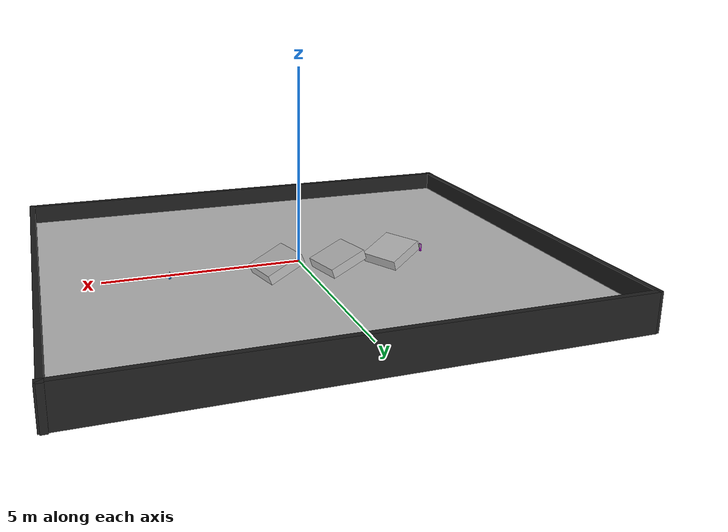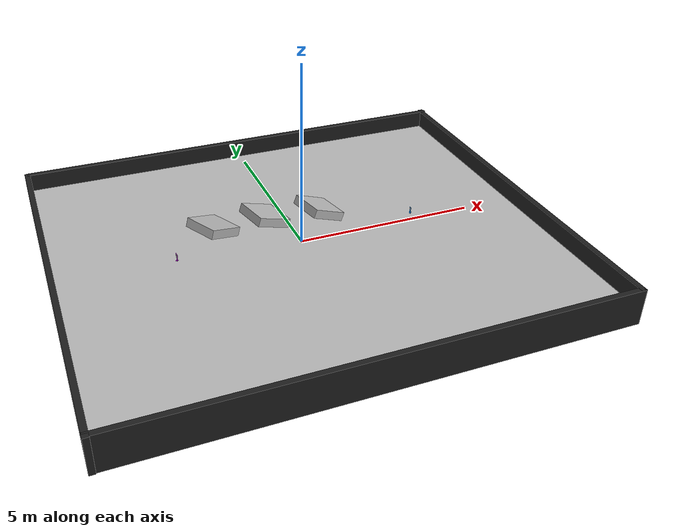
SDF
<sdf version="1.4">
  <world name="default">
    <scene>
      <ambient>0.8 0.8 0.8 1</ambient>
      <background>0.7 0.7 0.7 1</background>
      <shadows>true</shadows>
    </scene>

    <!-- A global light source -->
    <include>
      <uri>model://sun</uri>
      <pose> -2.0 2.0 2.0 0 0 0</pose>
    </include>

  <!-- Piso da sala - circuito -->
    <include>
      <uri>model://corredor/pisosala</uri>
      <pose> 0 0 0 0 0 -1.57</pose>
    </include>

  <!-- Parede da sala - circuito -->
    <include>
      <uri>model://corredor/parede</uri>
      <pose> 0 0 0 0 0 0</pose>
    </include>

<!--  creeper_21_laranja -->
    <include>
      <uri>model://corredor/creepers/creeper_21_laranja</uri>
      <pose> -3.33  0.28 0   0 0 -3.07</pose>
    </include>

<!--  creeper_11_azul-->
    <include>
      <uri>model://corredor/creepers/creeper_11_azul</uri>
      <pose> 3.40  0.28 0   0 0 -3.07</pose>
    </include>

 <!--  creeper_50 -->
    <include>
      <uri>model://corredor/creepers/creeper_50</uri>
      <pose> 0.83 0.92 0.24 0 0.40 0.23</pose>
    </include>

 <!--  creeper_150 -->
    <include>
      <uri>model://corredor/creepers/creeper_150</uri>
      <pose> -0.706 1.06 0.25 0 0.35 0.24</pose>
    </include>

 <!--  creeper_200 -->
    <include>
      <uri>model://corredor/creepers/creeper_200</uri>
      <pose> -2.182 0.975 0.25 0 0.33 0.48</pose>
    </include>

    <physics type="ode">
      <real_time_update_rate>1000.0</real_time_update_rate>
      <max_step_size>0.001</max_step_size>
      <real_time_factor>1</real_time_factor>
      <ode>
        <solver>
          <type>quick</type>
          <iters>150</iters>
          <precon_iters>0</precon_iters>
          <sor>1.400000</sor>
          <use_dynamic_moi_rescaling>1</use_dynamic_moi_rescaling>
        </solver>
        <constraints>
          <cfm>0.00001</cfm>
          <erp>0.2</erp>
          <contact_max_correcting_vel>2000.000000</contact_max_correcting_vel>
          <contact_surface_layer>0.01000</contact_surface_layer>
        </constraints>
      </ode>
    </physics>

    <gui fullscreen='0'>
      <camera name='user_camera'>
        <pose frame=''>0.238775 -6.8831 10.8485 -0 0.979642 1.5602</pose>
        <view_controller>orbit</view_controller>
        <projection_type>perspective</projection_type>
      </camera>
    </gui>

  </world>

</sdf>

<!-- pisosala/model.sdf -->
<sdf version="1.6">
  <model name="pisosala_forca">
    <static>true</static>
    <link name="course_link">
      <collision name="course_collision">
        <geometry>
          <plane>
            <normal>0 0 1</normal>
            <size>10 13</size>
          </plane>
        </geometry>
        <surface>
          <friction>
            <ode>
              <mu>100</mu>
              <mu2>50</mu2>
            </ode>
          </friction>
        </surface>
      </collision>
      <visual name="course_visual">
        <cast_shadows>false</cast_shadows>
        <geometry>
          <mesh>
            <uri>model://forca/pisosala/materials/scripts/piso.dae</uri>
            <scale>1 1 1</scale>
          </mesh>
        </geometry>
      </visual>
    </link>
  </model>
</sdf>

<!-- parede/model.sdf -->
<sdf version='1.6'>
  <model name='parede'>
    <link name='Wall_0'>
      <pose frame=''>-0.004951 -5.56026 0 0 -0 0</pose>
      <self_collide>0</self_collide>
      <enable_wind>0</enable_wind>
      <kinematic>0</kinematic>
      <inertial>
        <inertia>
          <ixx>0</ixx>
          <ixy>0</ixy>
          <ixz>0</ixz>
          <iyy>0</iyy>
          <iyz>0</iyz>
          <izz>0</izz>
        </inertia>
        <mass>0</mass>
        <pose frame=''>0 0 0 0 -0 0</pose>
      </inertial>
      <gravity>1</gravity>
      <visual name='Wall_0_Visual'>
        <pose frame=''>0 0 0 0 -0 0</pose>
        <geometry>
          <box>
            <size>13.1161 0.15 1.0</size>
          </box>
        </geometry>
        <material>
          <script>
            <uri>file://media/materials/scripts/gazebo.material</uri>
            <name>Gazebo/Black</name>
          </script>
          <ambient>0 0 0 1</ambient>
          <shader type='vertex'>
            <normal_map>__default__</normal_map>
          </shader>
          <diffuse>0 0 0 1</diffuse>
          <specular>0 0 0 1</specular>
          <emissive>0 0 0 1</emissive>
        </material>
        <meta>
          <layer>0</layer>
        </meta>
        <transparency>0</transparency>
        <cast_shadows>1</cast_shadows>
      </visual>
      <collision name='Wall_0_Collision'>
        <laser_retro>0</laser_retro>
        <max_contacts>10</max_contacts>
        <pose frame=''>0 0 0 0 -0 0</pose>
        <geometry>
          <box>
            <size>13.1161 0.15 1.0</size>
          </box>
        </geometry>
        <surface>
          <friction>
            <ode>
              <mu>1</mu>
              <mu2>1</mu2>
              <fdir1>0 0 0</fdir1>
              <slip1>0</slip1>
              <slip2>0</slip2>
            </ode>
            <torsional>
              <coefficient>1</coefficient>
              <patch_radius>0</patch_radius>
              <surface_radius>0</surface_radius>
              <use_patch_radius>1</use_patch_radius>
              <ode>
                <slip>0</slip>
              </ode>
            </torsional>
          </friction>
          <bounce>
            <restitution_coefficient>0</restitution_coefficient>
            <threshold>1e+06</threshold>
          </bounce>
          <contact>
            <collide_without_contact>0</collide_without_contact>
            <collide_without_contact_bitmask>1</collide_without_contact_bitmask>
            <collide_bitmask>1</collide_bitmask>
            <ode>
              <soft_cfm>0</soft_cfm>
              <soft_erp>0.2</soft_erp>
              <kp>1e+13</kp>
              <kd>1</kd>
              <max_vel>0.01</max_vel>
              <min_depth>0</min_depth>
            </ode>
            <bullet>
              <split_impulse>1</split_impulse>
              <split_impulse_penetration_threshold>-0.01</split_impulse_penetration_threshold>
              <soft_cfm>0</soft_cfm>
              <soft_erp>0.2</soft_erp>
              <kp>1e+13</kp>
              <kd>1</kd>
            </bullet>
          </contact>
        </surface>
      </collision>
    </link>
    <link name='Wall_1'>
      <pose frame=''>0.061052 5.53717 0 0 -0 3.14</pose>
      <self_collide>0</self_collide>
      <enable_wind>0</enable_wind>
      <kinematic>0</kinematic>
      <inertial>
        <inertia>
          <ixx>0</ixx>
          <ixy>0</ixy>
          <ixz>0</ixz>
          <iyy>0</iyy>
          <iyz>0</iyz>
          <izz>0</izz>
        </inertia>
        <mass>0</mass>
        <pose frame=''>0 0 0 0 -0 0</pose>
      </inertial>
      <gravity>1</gravity>
      <visual name='Wall_1_Visual'>
        <pose frame=''>0 0 0 0 -0 0</pose>
        <geometry>
          <box>
            <size>13.1161 0.15 1.0</size>
          </box>
        </geometry>
        <material>
          <script>
            <uri>file://media/materials/scripts/gazebo.material</uri>
            <name>Gazebo/Black</name>
          </script>
          <ambient>0 0 0 1</ambient>
          <shader type='vertex'>
            <normal_map>__default__</normal_map>
          </shader>
          <diffuse>0 0 0 1</diffuse>
          <specular>0 0 0 1</specular>
          <emissive>0 0 0 1</emissive>
        </material>
        <meta>
          <layer>0</layer>
        </meta>
        <transparency>0</transparency>
        <cast_shadows>1</cast_shadows>
      </visual>
      <collision name='Wall_1_Collision'>
        <laser_retro>0</laser_retro>
        <max_contacts>10</max_contacts>
        <pose frame=''>0 0 0 0 -0 0</pose>
        <geometry>
          <box>
            <size>13.1161 0.15 1.0</size>
          </box>
        </geometry>
        <surface>
          <friction>
            <ode>
              <mu>1</mu>
              <mu2>1</mu2>
              <fdir1>0 0 0</fdir1>
              <slip1>0</slip1>
              <slip2>0</slip2>
            </ode>
            <torsional>
              <coefficient>1</coefficient>
              <patch_radius>0</patch_radius>
              <surface_radius>0</surface_radius>
              <use_patch_radius>1</use_patch_radius>
              <ode>
                <slip>0</slip>
              </ode>
            </torsional>
          </friction>
          <bounce>
            <restitution_coefficient>0</restitution_coefficient>
            <threshold>1e+06</threshold>
          </bounce>
          <contact>
            <collide_without_contact>0</collide_without_contact>
            <collide_without_contact_bitmask>1</collide_without_contact_bitmask>
            <collide_bitmask>1</collide_bitmask>
            <ode>
              <soft_cfm>0</soft_cfm>
              <soft_erp>0.2</soft_erp>
              <kp>1e+13</kp>
              <kd>1</kd>
              <max_vel>0.01</max_vel>
              <min_depth>0</min_depth>
            </ode>
            <bullet>
              <split_impulse>1</split_impulse>
              <split_impulse_penetration_threshold>-0.01</split_impulse_penetration_threshold>
              <soft_cfm>0</soft_cfm>
              <soft_erp>0.2</soft_erp>
              <kp>1e+13</kp>
              <kd>1</kd>
            </bullet>
          </contact>
        </surface>
      </collision>
    </link>
    <link name='Wall_2'>
      <pose frame=''>6.5 0.005899 0 0 -0 1.57</pose>
      <self_collide>0</self_collide>
      <enable_wind>0</enable_wind>
      <kinematic>0</kinematic>
      <inertial>
        <inertia>
          <ixx>0</ixx>
          <ixy>0</ixy>
          <ixz>0</ixz>
          <iyy>0</iyy>
          <iyz>0</iyz>
          <izz>0</izz>
        </inertia>
        <mass>0</mass>
        <pose frame=''>0 0 0 0 -0 0</pose>
      </inertial>
      <gravity>1</gravity>
      <visual name='Wall_2_Visual'>
        <pose frame=''>0 0 0 0 -0 0</pose>
        <geometry>
          <box>
            <size>11.2703 0.15 1.0</size>
          </box>
        </geometry>
        <material>
          <script>
            <uri>file://media/materials/scripts/gazebo.material</uri>
            <name>Gazebo/Black</name>
          </script>
          <ambient>0 0 0 1</ambient>
          <shader type='vertex'>
            <normal_map>__default__</normal_map>
          </shader>
          <diffuse>0 0 0 1</diffuse>
          <specular>0 0 0 1</specular>
          <emissive>0 0 0 1</emissive>
        </material>
        <meta>
          <layer>0</layer>
        </meta>
        <transparency>0</transparency>
        <cast_shadows>1</cast_shadows>
      </visual>
      <collision name='Wall_2_Collision'>
        <laser_retro>0</laser_retro>
        <max_contacts>10</max_contacts>
        <pose frame=''>0 0 0 0 -0 0</pose>
        <geometry>
          <box>
            <size>11.2703 0.15 1.0</size>
          </box>
        </geometry>
        <surface>
          <friction>
            <ode>
              <mu>1</mu>
              <mu2>1</mu2>
              <fdir1>0 0 0</fdir1>
              <slip1>0</slip1>
              <slip2>0</slip2>
            </ode>
            <torsional>
              <coefficient>1</coefficient>
              <patch_radius>0</patch_radius>
              <surface_radius>0</surface_radius>
              <use_patch_radius>1</use_patch_radius>
              <ode>
                <slip>0</slip>
              </ode>
            </torsional>
          </friction>
          <bounce>
            <restitution_coefficient>0</restitution_coefficient>
            <threshold>1e+06</threshold>
          </bounce>
          <contact>
            <collide_without_contact>0</collide_without_contact>
            <collide_without_contact_bitmask>1</collide_without_contact_bitmask>
            <collide_bitmask>1</collide_bitmask>
            <ode>
              <soft_cfm>0</soft_cfm>
              <soft_erp>0.2</soft_erp>
              <kp>1e+13</kp>
              <kd>1</kd>
              <max_vel>0.01</max_vel>
              <min_depth>0</min_depth>
            </ode>
            <bullet>
              <split_impulse>1</split_impulse>
              <split_impulse_penetration_threshold>-0.01</split_impulse_penetration_threshold>
              <soft_cfm>0</soft_cfm>
              <soft_erp>0.2</soft_erp>
              <kp>1e+13</kp>
              <kd>1</kd>
            </bullet>
          </contact>
        </surface>
      </collision>
    </link>
    <link name='Wall_3'>
      <pose frame=''>-6.49998 -0.025026 0 0 0 -1.57</pose>
      <self_collide>0</self_collide>
      <enable_wind>0</enable_wind>
      <kinematic>0</kinematic>
      <inertial>
        <inertia>
          <ixx>0</ixx>
          <ixy>0</ixy>
          <ixz>0</ixz>
          <iyy>0</iyy>
          <iyz>0</iyz>
          <izz>0</izz>
        </inertia>
        <mass>0</mass>
        <pose frame=''>0 0 0 0 -0 0</pose>
      </inertial>
      <gravity>1</gravity>
      <visual name='Wall_3_Visual'>
        <pose frame=''>0 0 0 0 -0 0</pose>
        <geometry>
          <box>
            <size>11.2703 0.15 1.0</size>
          </box>
        </geometry>
        <material>
          <script>
            <uri>file://media/materials/scripts/gazebo.material</uri>
            <name>Gazebo/Black</name>
          </script>
          <ambient>0 0 0 1</ambient>
          <shader type='vertex'>
            <normal_map>__default__</normal_map>
          </shader>
          <diffuse>0 0 0 1</diffuse>
          <specular>0 0 0 1</specular>
          <emissive>0 0 0 1</emissive>
        </material>
        <meta>
          <layer>0</layer>
        </meta>
        <transparency>0</transparency>
        <cast_shadows>1</cast_shadows>
      </visual>
      <collision name='Wall_3_Collision'>
        <laser_retro>0</laser_retro>
        <max_contacts>10</max_contacts>
        <pose frame=''>0 0 0 0 -0 0</pose>
        <geometry>
          <box>
            <size>11.2703 0.15 1.0</size>
          </box>
        </geometry>
        <surface>
          <friction>
            <ode>
              <mu>1</mu>
              <mu2>1</mu2>
              <fdir1>0 0 0</fdir1>
              <slip1>0</slip1>
              <slip2>0</slip2>
            </ode>
            <torsional>
              <coefficient>1</coefficient>
              <patch_radius>0</patch_radius>
              <surface_radius>0</surface_radius>
              <use_patch_radius>1</use_patch_radius>
              <ode>
                <slip>0</slip>
              </ode>
            </torsional>
          </friction>
          <bounce>
            <restitution_coefficient>0</restitution_coefficient>
            <threshold>1e+06</threshold>
          </bounce>
          <contact>
            <collide_without_contact>0</collide_without_contact>
            <collide_without_contact_bitmask>1</collide_without_contact_bitmask>
            <collide_bitmask>1</collide_bitmask>
            <ode>
              <soft_cfm>0</soft_cfm>
              <soft_erp>0.2</soft_erp>
              <kp>1e+13</kp>
              <kd>1</kd>
              <max_vel>0.01</max_vel>
              <min_depth>0</min_depth>
            </ode>
            <bullet>
              <split_impulse>1</split_impulse>
              <split_impulse_penetration_threshold>-0.01</split_impulse_penetration_threshold>
              <soft_cfm>0</soft_cfm>
              <soft_erp>0.2</soft_erp>
              <kp>1e+13</kp>
              <kd>1</kd>
            </bullet>
          </contact>
        </surface>
      </collision>
    </link>
    <static>1</static>
    <allow_auto_disable>1</allow_auto_disable>
  </model>
</sdf>

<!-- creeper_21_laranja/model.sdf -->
<sdf version='1.6'>
  <model name='creeper_21_laranja'>
    <link name='link'>
      <pose frame=''>0 -0 0.115 0 -0 0</pose>
      <inertial>
        <mass>0.00004</mass>
        <inertia>
          <ixx>2.01e-06</ixx>
          <ixy>0</ixy>
          <ixz>0</ixz>
          <iyy>2.01e-06</iyy>
          <iyz>0</iyz>
          <izz>5.9e-07</izz>
        </inertia>
        <pose frame=''>0 0 0 0 -0 0</pose>
      </inertial>
      <self_collide>0</self_collide>
      <enable_wind>0</enable_wind>
      <kinematic>0</kinematic>
      <gravity>1</gravity>
      <visual name='visual'>
        <pose frame=''>0 0 -0.15 0 -0 0</pose>
        <geometry>
          <mesh>
            <uri>model://corredor/creepers/creeper_21_laranja/materials/textures/creeper.dae</uri>
            <scale>1 1 1</scale>
          </mesh>
        </geometry>
        <transparency>0</transparency>
        <cast_shadows>1</cast_shadows>
      </visual>
      <collision name='collision'>
        <laser_retro>0</laser_retro>
        <max_contacts>10</max_contacts>
        <pose frame=''>0 0 0 0 -0 0</pose>
        <geometry>
          <box>
            <size>0.015 0.035 0.2</size>
          </box>
        </geometry>
        <surface>
          <friction>
            <ode>
              <mu>10</mu>
              <mu2>10</mu2>
              <fdir1>0 0 0</fdir1>
              <slip1>0</slip1>
              <slip2>0</slip2>
            </ode>
            <torsional>
              <coefficient>1</coefficient>
              <patch_radius>0</patch_radius>
              <surface_radius>0</surface_radius>
              <use_patch_radius>1</use_patch_radius>
              <ode>
                <slip>0</slip>
              </ode>
            </torsional>
          </friction>
          <bounce>
            <restitution_coefficient>0</restitution_coefficient>
            <threshold>1e+06</threshold>
          </bounce>
          <contact>
            <collide_without_contact>0</collide_without_contact>
            <collide_without_contact_bitmask>1</collide_without_contact_bitmask>
            <collide_bitmask>1</collide_bitmask>
            <ode>
              <soft_cfm>0</soft_cfm>
              <soft_erp>0.2</soft_erp>
              <kp>1e+13</kp>
              <kd>1</kd>
              <max_vel>0.01</max_vel>
              <min_depth>0</min_depth>
            </ode>
            <bullet>
              <split_impulse>1</split_impulse>
              <split_impulse_penetration_threshold>-0.01</split_impulse_penetration_threshold>
              <soft_cfm>0</soft_cfm>
              <soft_erp>0.2</soft_erp>
              <kp>1e+13</kp>
              <kd>1</kd>
            </bullet>
          </contact>
        </surface>
      </collision>
    </link>
    <static>0</static>
    <allow_auto_disable>1</allow_auto_disable>
 <link name='link_0'>
      <inertial>
        <mass>1.97443e-05</mass>
        <inertia>
          <ixx>1.1422e-08</ixx>
          <ixy>0</ixy>
          <ixz>0</ixz>
          <iyy>1.38195e-09</iyy>
          <iyz>0</iyz>
          <izz>1.21731e-08</izz>
        </inertia>
        <pose>0 0 0 0 -0 0</pose>
      </inertial>
      <pose>-0.0007 0.000208 0.189635 -1.2e-05 1e-06 8e-06</pose>
      <self_collide>0</self_collide>
      <enable_wind>0</enable_wind>
      <kinematic>0</kinematic>
      <visual name='visual'>
        <pose>0 0 0.2 0 -0 0</pose>
        <geometry>
          <box>
            <size>1e-06 8e-06 1e-06</size>
          </box>
        </geometry>
        <transparency>0</transparency>
        <cast_shadows>1</cast_shadows>
        <material>
          <shader type='vertex'>
            <normal_map>__default__</normal_map>
          </shader>
        </material>
      </visual>
      <collision name='collision'>
        <laser_retro>0</laser_retro>
        <max_contacts>10</max_contacts>
        <pose>0 0 0 0 -0 0</pose>
        <geometry>
          <box>
            <size>0.02546 0.08216 0.013845</size>
          </box>
        </geometry>
        <surface>
          <friction>
            <ode>
              <mu>1</mu>
              <mu2>1</mu2>
              <fdir1>0 0 0</fdir1>
              <slip1>0</slip1>
              <slip2>0</slip2>
            </ode>
            <torsional>
              <coefficient>1</coefficient>
              <patch_radius>0</patch_radius>
              <surface_radius>0</surface_radius>
              <use_patch_radius>1</use_patch_radius>
              <ode>
                <slip>0</slip>
              </ode>
            </torsional>
          </friction>
          <bounce>
            <restitution_coefficient>0</restitution_coefficient>
            <threshold>1e+06</threshold>
          </bounce>
          <contact>
            <collide_without_contact>0</collide_without_contact>
            <collide_without_contact_bitmask>1</collide_without_contact_bitmask>
            <collide_bitmask>1</collide_bitmask>
            <ode>
              <soft_cfm>0</soft_cfm>
              <soft_erp>0.2</soft_erp>
              <kp>1e+13</kp>
              <kd>1</kd>
              <max_vel>0.01</max_vel>
              <min_depth>0</min_depth>
            </ode>
            <bullet>
              <split_impulse>1</split_impulse>
              <split_impulse_penetration_threshold>-0.01</split_impulse_penetration_threshold>
              <soft_cfm>0</soft_cfm>
              <soft_erp>0.2</soft_erp>
              <kp>1e+13</kp>
              <kd>1</kd>
            </bullet>
          </contact>
        </surface>
      </collision>
    </link>
       <joint name='link_0_JOINT_0' type='fixed'>
      <parent>link</parent>
      <child>link_0</child>
      <pose>0 0 0 0 -0 0</pose>
      <physics>
        <ode>
          <limit>
            <cfm>0</cfm>
            <erp>0.2</erp>
          </limit>
          <suspension>
            <cfm>0</cfm>
            <erp>0.2</erp>
          </suspension>
        </ode>
      </physics>
    </joint>
    <joint name='link_0_JOINT_0' type='fixed'>
      <parent>link</parent>
      <child>link_0</child>
      <pose>0 0 0 0 -0 0</pose>
      <physics>
        <ode>
          <limit>
            <cfm>0</cfm>
            <erp>0.2</erp>
          </limit>
          <suspension>
            <cfm>0</cfm>
            <erp>0.2</erp>
          </suspension>
        </ode>
      </physics>
    </joint>
    <static>0</static>
    <allow_auto_disable>1</allow_auto_disable>
  </model>
</sdf>

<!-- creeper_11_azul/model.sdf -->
<sdf version='1.6'>
  <model name='creeper_11_azul'>
    <link name='link'>
      <pose frame=''>0 -0 0.115 0 -0 0</pose>
      <inertial>
        <mass>0.00004</mass>
        <inertia>
          <ixx>2.01e-06</ixx>
          <ixy>0</ixy>
          <ixz>0</ixz>
          <iyy>2.01e-06</iyy>
          <iyz>0</iyz>
          <izz>5.9e-07</izz>
        </inertia>
        <pose frame=''>0 0 0 0 -0 0</pose>
      </inertial>
      <self_collide>0</self_collide>
      <enable_wind>0</enable_wind>
      <kinematic>0</kinematic>
      <gravity>1</gravity>
      <visual name='visual'>
        <pose frame=''>0 0 -0.15 0 0 0</pose>
        <geometry>
          <mesh>
            <uri>model://corredor/creepers/creeper_11_azul/materials/textures/creeper.dae</uri>
            <scale>1 1 1</scale>
          </mesh>
        </geometry>
        <transparency>0</transparency>
        <cast_shadows>1</cast_shadows>
      </visual>
      <collision name='collision'>
        <laser_retro>0</laser_retro>
        <max_contacts>10</max_contacts>
        <pose frame=''>0 0 0 0 -0 0</pose>
        <geometry>
          <box>
            <size>0.015 0.035 0.2</size>
          </box>
        </geometry>
        <surface>
          <friction>
            <ode>
              <mu>10</mu>
              <mu2>10</mu2>
              <fdir1>0 0 0</fdir1>
              <slip1>0</slip1>
              <slip2>0</slip2>
            </ode>
            <torsional>
              <coefficient>1</coefficient>
              <patch_radius>0</patch_radius>
              <surface_radius>0</surface_radius>
              <use_patch_radius>1</use_patch_radius>
              <ode>
                <slip>0</slip>
              </ode>
            </torsional>
          </friction>
          <bounce>
            <restitution_coefficient>0</restitution_coefficient>
            <threshold>1e+06</threshold>
          </bounce>
          <contact>
            <collide_without_contact>0</collide_without_contact>
            <collide_without_contact_bitmask>1</collide_without_contact_bitmask>
            <collide_bitmask>1</collide_bitmask>
            <ode>
              <soft_cfm>0</soft_cfm>
              <soft_erp>0.2</soft_erp>
              <kp>1e+13</kp>
              <kd>1</kd>
              <max_vel>0.01</max_vel>
              <min_depth>0</min_depth>
            </ode>
            <bullet>
              <split_impulse>1</split_impulse>
              <split_impulse_penetration_threshold>-0.01</split_impulse_penetration_threshold>
              <soft_cfm>0</soft_cfm>
              <soft_erp>0.2</soft_erp>
              <kp>1e+13</kp>
              <kd>1</kd>
            </bullet>
          </contact>
        </surface>
      </collision>
    </link>
    <static>0</static>
    <allow_auto_disable>1</allow_auto_disable>
    <link name='link_0'>
      <inertial>
        <mass>1.97443e-05</mass>
        <inertia>
          <ixx>1.1422e-08</ixx>
          <ixy>0</ixy>
          <ixz>0</ixz>
          <iyy>1.38195e-09</iyy>
          <iyz>0</iyz>
          <izz>1.21731e-08</izz>
        </inertia>
        <pose>0 0 0 0 -0 0</pose>
      </inertial>
      <pose>-0.0007 0.000208 0.189635 -1.2e-05 1e-06 8e-06</pose>
      <self_collide>0</self_collide>
      <enable_wind>0</enable_wind>
      <kinematic>0</kinematic>
      <visual name='visual'>
        <pose>0 0 0.2 0 -0 0</pose>
        <geometry>
          <box>
            <size>1e-06 8e-06 1e-06</size>
          </box>
        </geometry>
        <transparency>0</transparency>
        <cast_shadows>1</cast_shadows>
        <material>
          <shader type='vertex'>
            <normal_map>__default__</normal_map>
          </shader>
        </material>
      </visual>
      <collision name='collision'>
        <laser_retro>0</laser_retro>
        <max_contacts>10</max_contacts>
        <pose>0 0 0 0 -0 0</pose>
        <geometry>
          <box>
            <size>0.02546 0.08216 0.013845</size>
          </box>
        </geometry>
        <surface>
          <friction>
            <ode>
              <mu>1</mu>
              <mu2>1</mu2>
              <fdir1>0 0 0</fdir1>
              <slip1>0</slip1>
              <slip2>0</slip2>
            </ode>
            <torsional>
              <coefficient>1</coefficient>
              <patch_radius>0</patch_radius>
              <surface_radius>0</surface_radius>
              <use_patch_radius>1</use_patch_radius>
              <ode>
                <slip>0</slip>
              </ode>
            </torsional>
          </friction>
          <bounce>
            <restitution_coefficient>0</restitution_coefficient>
            <threshold>1e+06</threshold>
          </bounce>
          <contact>
            <collide_without_contact>0</collide_without_contact>
            <collide_without_contact_bitmask>1</collide_without_contact_bitmask>
            <collide_bitmask>1</collide_bitmask>
            <ode>
              <soft_cfm>0</soft_cfm>
              <soft_erp>0.2</soft_erp>
              <kp>1e+13</kp>
              <kd>1</kd>
              <max_vel>0.01</max_vel>
              <min_depth>0</min_depth>
            </ode>
            <bullet>
              <split_impulse>1</split_impulse>
              <split_impulse_penetration_threshold>-0.01</split_impulse_penetration_threshold>
              <soft_cfm>0</soft_cfm>
              <soft_erp>0.2</soft_erp>
              <kp>1e+13</kp>
              <kd>1</kd>
            </bullet>
          </contact>
        </surface>
      </collision>
    </link>
       <joint name='link_0_JOINT_0' type='fixed'>
      <parent>link</parent>
      <child>link_0</child>
      <pose>0 0 0 0 -0 0</pose>
      <physics>
        <ode>
          <limit>
            <cfm>0</cfm>
            <erp>0.2</erp>
          </limit>
          <suspension>
            <cfm>0</cfm>
            <erp>0.2</erp>
          </suspension>
        </ode>
      </physics>
    </joint>
    <joint name='link_0_JOINT_0' type='fixed'>
      <parent>link</parent>
      <child>link_0</child>
      <pose>0 0 0 0 -0 0</pose>
      <physics>
        <ode>
          <limit>
            <cfm>0</cfm>
            <erp>0.2</erp>
          </limit>
          <suspension>
            <cfm>0</cfm>
            <erp>0.2</erp>
          </suspension>
        </ode>
      </physics>
    </joint>
    <static>0</static>
    <allow_auto_disable>1</allow_auto_disable>
  </model>
</sdf>

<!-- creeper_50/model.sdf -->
<sdf version="1.6">
  <model name="creeper_50">
    <static>true</static>
    <link name="box">
      <pose>0 0 0 0 0 0</pose>
      <collision name="collision">
        <geometry>
          <mesh>
            <uri>model://corredor/creepers/creeper_50/materials/textures/caixa.dae</uri>
            <scale>1 1 1</scale>
          </mesh>
        </geometry>
      </collision>
      <visual name='visual'>
        <pose frame=''>0 0 0 0 0 0</pose>
        <geometry>
          <mesh>
            <uri>model://corredor/creepers/creeper_50/materials/textures/caixa.dae</uri>
            <scale>1 1 1</scale>
          </mesh>
        </geometry>
        <transparency>0</transparency>
        <cast_shadows>1</cast_shadows>
      </visual>
    </link>
  </model>
</sdf>

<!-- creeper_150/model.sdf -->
<sdf version="1.6">
  <model name="creeper_150">
    <static>true</static>
    <link name="box">
      <pose>0 0 0 0 0 0</pose>
      <collision name="collision">
        <geometry>
          <mesh>
            <uri>model://corredor/creepers/creeper_150/materials/textures/caixa.dae</uri>
            <scale>1 1 1</scale>
          </mesh>
        </geometry>
      </collision>
      <visual name='visual'>
        <pose frame=''>0 0 0 0 0 0</pose>
        <geometry>
          <mesh>
            <uri>model://corredor/creepers/creeper_150/materials/textures/caixa.dae</uri>
            <scale>1 1 1</scale>
          </mesh>
        </geometry>
        <transparency>0</transparency>
        <cast_shadows>1</cast_shadows>
      </visual>
    </link>
  </model>
</sdf>

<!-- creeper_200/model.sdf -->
<sdf version="1.6">
  <model name="creeper_200">
    <static>true</static>
    <link name="box">
      <pose>0 0 0 0 0 0</pose>
      <collision name="collision">
        <geometry>
          <mesh>
            <uri>model://corredor/creepers/creeper_200/materials/textures/caixa.dae</uri>
            <scale>1 1 1</scale>
          </mesh>
        </geometry>
      </collision>
      <visual name='visual'>
        <pose frame=''>0 0 0 0 0 0</pose>
        <geometry>
          <mesh>
            <uri>model://corredor/creepers/creeper_200/materials/textures/caixa.dae</uri>
            <scale>1 1 1</scale>
          </mesh>
        </geometry>
        <transparency>0</transparency>
        <cast_shadows>1</cast_shadows>
      </visual>
    </link>
  </model>
</sdf>
